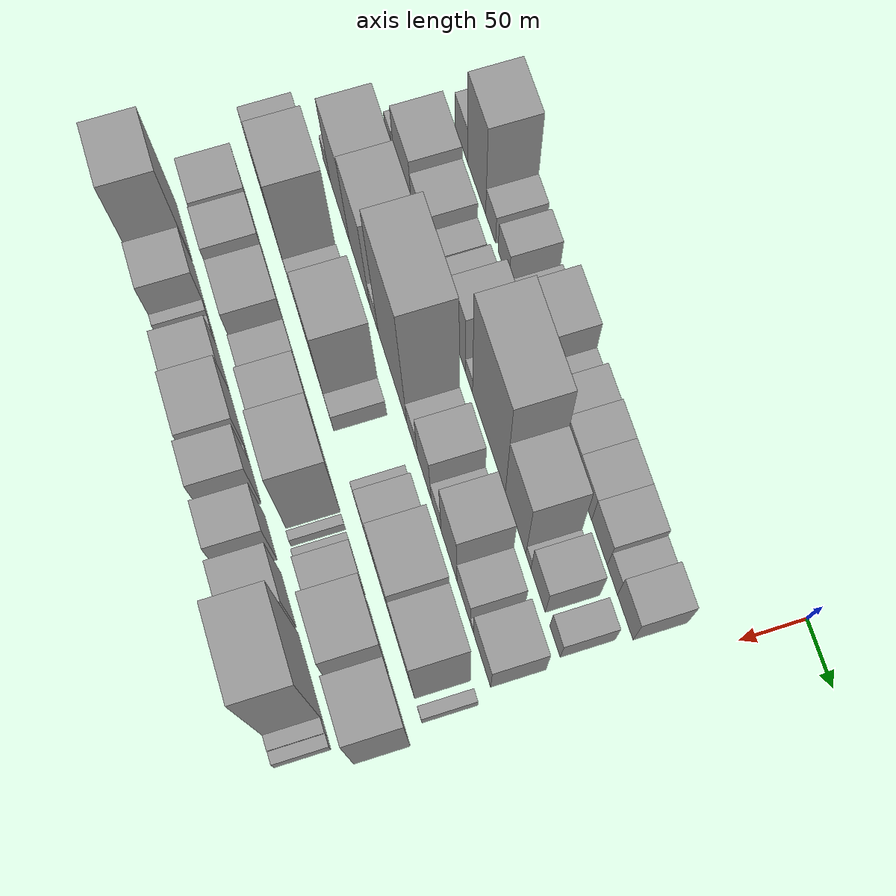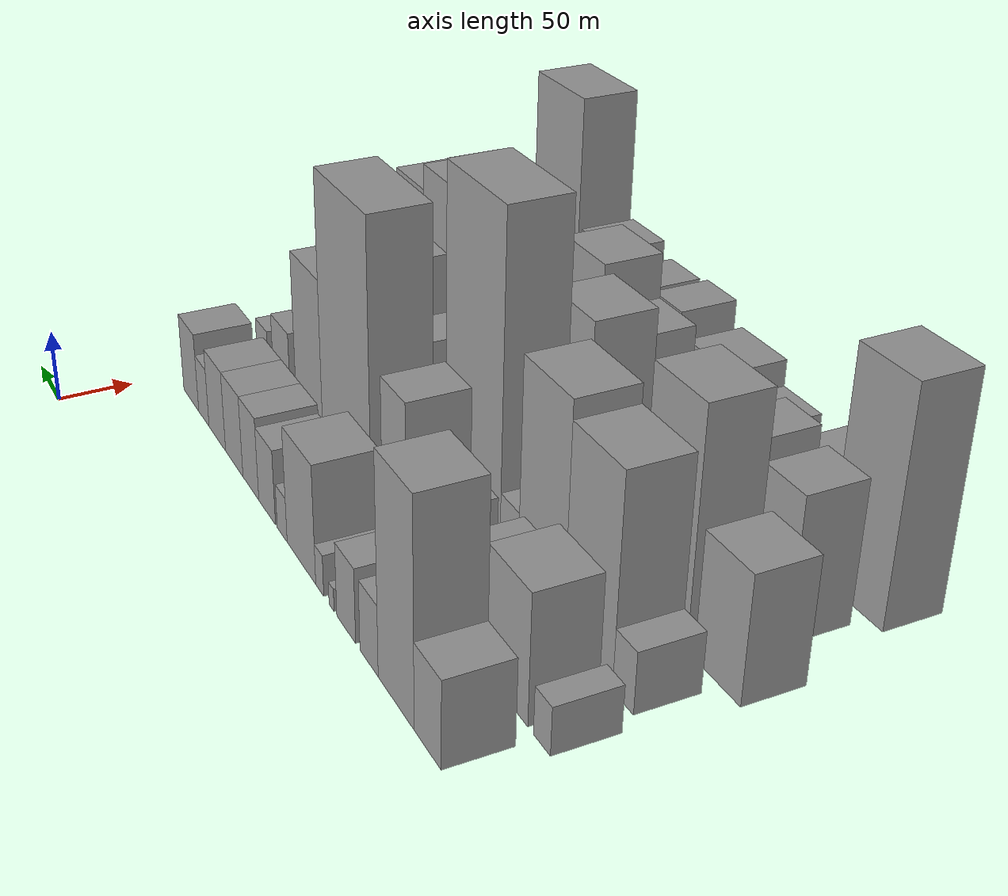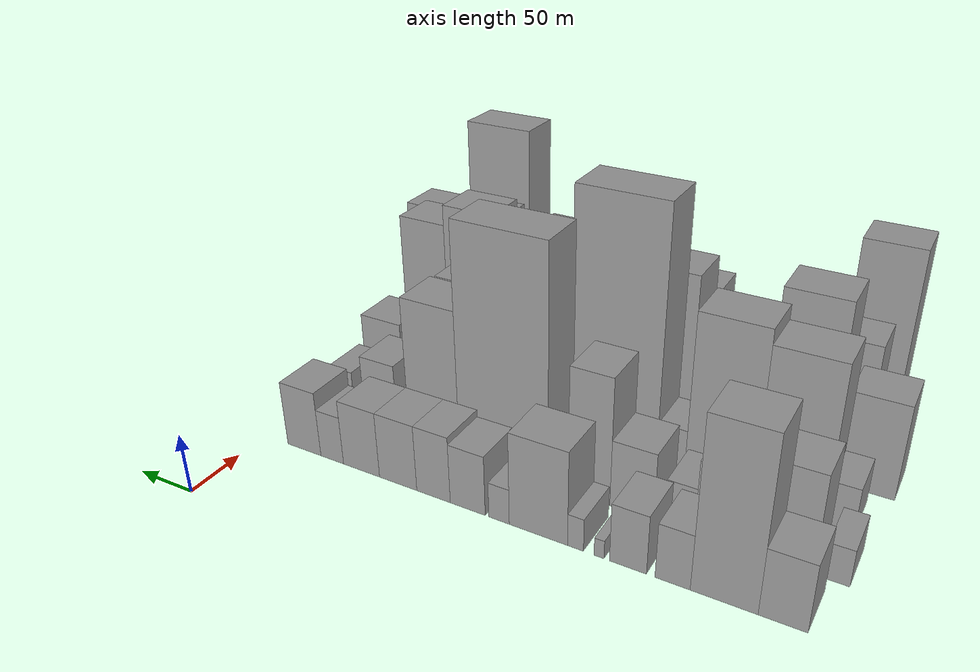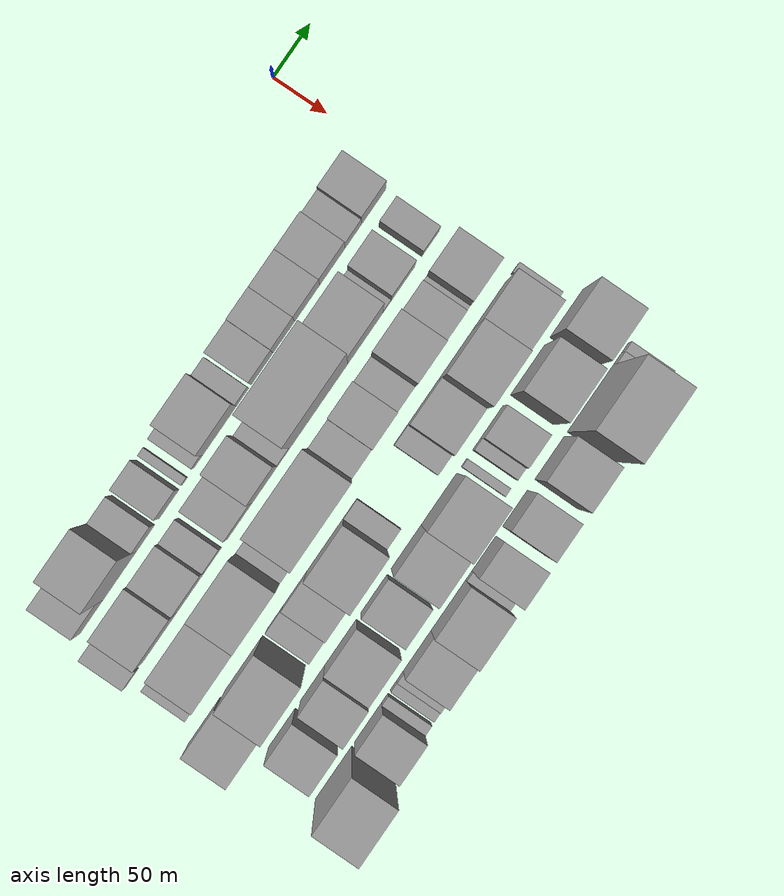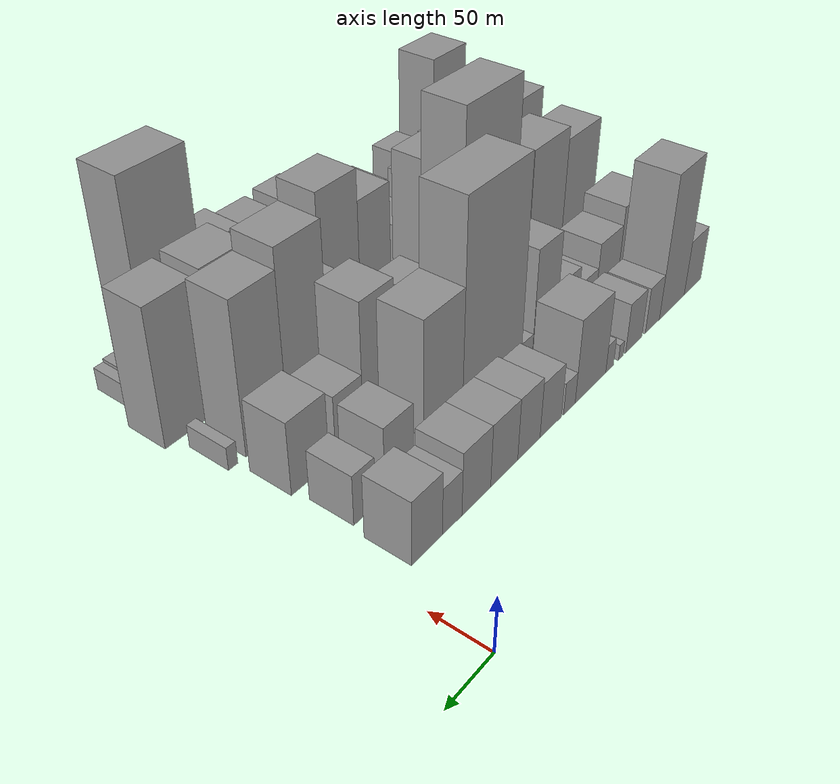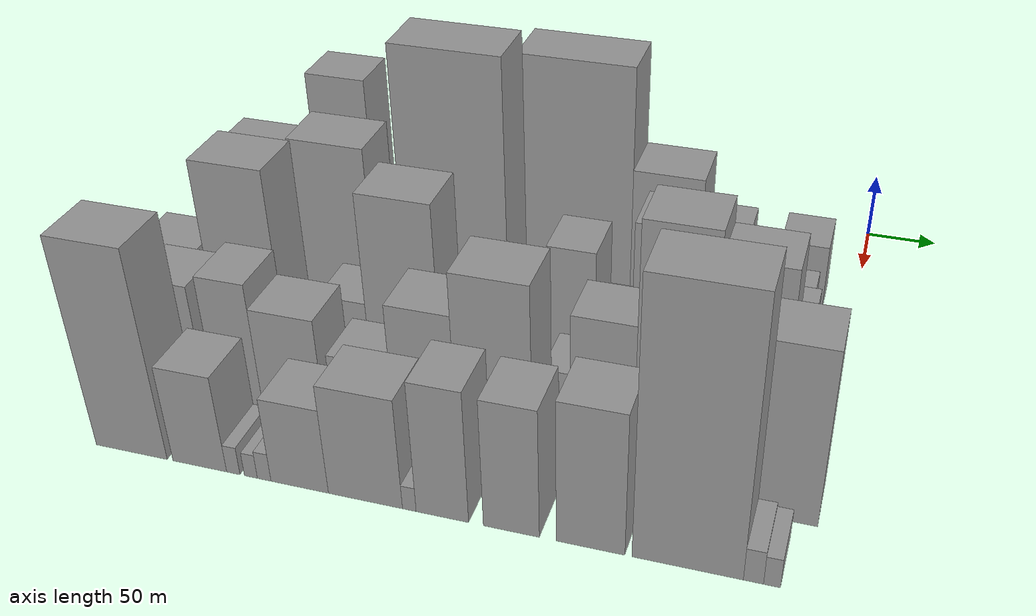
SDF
<sdf version="1.6">
 <world name="default">
  <model name="building_13">
   <static>1</static>
   <pose>100.0000 -419.7006 0 0.000000 0.000000 0.000000</pose>
   <link name="link">
    <pose>0 0 27.00 0 0 0</pose>
    <collision name="collision"><geometry><box><size>40.0000 31.6068 54.0000</size></box></geometry></collision>
    <visual name="visual">
     <cast_shadows>0</cast_shadows>
     <geometry><box><size>40.0000 31.6068 54.0000</size></box></geometry>
     <material>
      <script>
       <uri>model://grey_wall/materials/scripts</uri>
       <uri>model://grey_wall/materials/textures</uri>
       <name>vrc/grey_wall</name>
      </script>
     </material>
    </visual>
   </link>
  </model>
  <model name="building_14">
   <static>1</static>
   <pose>100.0000 -381.3172 0 0.000000 0.000000 0.000000</pose>
   <link name="link">
    <pose>0 0 69.00 0 0 0</pose>
    <collision name="collision"><geometry><box><size>40.0000 45.1601 138.0000</size></box></geometry></collision>
    <visual name="visual">
     <cast_shadows>0</cast_shadows>
     <geometry><box><size>40.0000 45.1601 138.0000</size></box></geometry>
     <material>
      <script>
       <uri>model://grey_wall/materials/scripts</uri>
       <uri>model://grey_wall/materials/textures</uri>
       <name>vrc/grey_wall</name>
      </script>
     </material>
    </visual>
   </link>
  </model>
  <model name="building_15">
   <static>1</static>
   <pose>100.0000 -346.4938 0 0.000000 0.000000 0.000000</pose>
   <link name="link">
    <pose>0 0 22.50 0 0 0</pose>
    <collision name="collision"><geometry><box><size>40.0000 24.4866 45.0000</size></box></geometry></collision>
    <visual name="visual">
     <cast_shadows>0</cast_shadows>
     <geometry><box><size>40.0000 24.4866 45.0000</size></box></geometry>
     <material>
      <script>
       <uri>model://grey_wall/materials/scripts</uri>
       <uri>model://grey_wall/materials/textures</uri>
       <name>vrc/grey_wall</name>
      </script>
     </material>
    </visual>
   </link>
  </model>
  <model name="building_16">
   <static>1</static>
   <pose>100.0000 -314.8308 0 0.000000 0.000000 0.000000</pose>
   <link name="link">
    <pose>0 0 24.00 0 0 0</pose>
    <collision name="collision"><geometry><box><size>40.0000 26.8396 48.0000</size></box></geometry></collision>
    <visual name="visual">
     <cast_shadows>0</cast_shadows>
     <geometry><box><size>40.0000 26.8396 48.0000</size></box></geometry>
     <material>
      <script>
       <uri>model://grey_wall/materials/scripts</uri>
       <uri>model://grey_wall/materials/textures</uri>
       <name>vrc/grey_wall</name>
      </script>
     </material>
    </visual>
   </link>
  </model>
  <model name="building_17">
   <static>1</static>
   <pose>100.0000 -293.7023 0 0.000000 0.000000 0.000000</pose>
   <link name="link">
    <pose>0 0 7.50 0 0 0</pose>
    <collision name="collision"><geometry><box><size>40.0000 7.4174 15.0000</size></box></geometry></collision>
    <visual name="visual">
     <cast_shadows>0</cast_shadows>
     <geometry><box><size>40.0000 7.4174 15.0000</size></box></geometry>
     <material>
      <script>
       <uri>model://grey_wall/materials/scripts</uri>
       <uri>model://grey_wall/materials/textures</uri>
       <name>vrc/grey_wall</name>
      </script>
     </material>
    </visual>
   </link>
  </model>
  <model name="building_18">
   <static>1</static>
   <pose>100.0000 -275.9032 0 0.000000 0.000000 0.000000</pose>
   <link name="link">
    <pose>0 0 13.50 0 0 0</pose>
    <collision name="collision"><geometry><box><size>40.0000 12.1808 27.0000</size></box></geometry></collision>
    <visual name="visual">
     <cast_shadows>0</cast_shadows>
     <geometry><box><size>40.0000 12.1808 27.0000</size></box></geometry>
     <material>
      <script>
       <uri>model://grey_wall/materials/scripts</uri>
       <uri>model://grey_wall/materials/textures</uri>
       <name>vrc/grey_wall</name>
      </script>
     </material>
    </visual>
   </link>
  </model>
  <model name="building_19">
   <static>1</static>
   <pose>100.0000 -246.8613 0 0.000000 0.000000 0.000000</pose>
   <link name="link">
    <pose>0 0 39.00 0 0 0</pose>
    <collision name="collision"><geometry><box><size>40.0000 45.9031 78.0000</size></box></geometry></collision>
    <visual name="visual">
     <cast_shadows>0</cast_shadows>
     <geometry><box><size>40.0000 45.9031 78.0000</size></box></geometry>
     <material>
      <script>
       <uri>model://grey_wall/materials/scripts</uri>
       <uri>model://grey_wall/materials/textures</uri>
       <name>vrc/grey_wall</name>
      </script>
     </material>
    </visual>
   </link>
  </model>
  <model name="building_20">
   <static>1</static>
   <pose>100.0000 -215.5407 0 0.000000 0.000000 0.000000</pose>
   <link name="link">
    <pose>0 0 15.00 0 0 0</pose>
    <collision name="collision"><geometry><box><size>40.0000 16.7380 30.0000</size></box></geometry></collision>
    <visual name="visual">
     <cast_shadows>0</cast_shadows>
     <geometry><box><size>40.0000 16.7380 30.0000</size></box></geometry>
     <material>
      <script>
       <uri>model://grey_wall/materials/scripts</uri>
       <uri>model://grey_wall/materials/textures</uri>
       <name>vrc/grey_wall</name>
      </script>
     </material>
    </visual>
   </link>
  </model>
  <model name="building_21">
   <static>1</static>
   <pose>100.0000 -189.4003 0 0.000000 0.000000 0.000000</pose>
   <link name="link">
    <pose>0 0 25.50 0 0 0</pose>
    <collision name="collision"><geometry><box><size>40.0000 29.5428 51.0000</size></box></geometry></collision>
    <visual name="visual">
     <cast_shadows>0</cast_shadows>
     <geometry><box><size>40.0000 29.5428 51.0000</size></box></geometry>
     <material>
      <script>
       <uri>model://grey_wall/materials/scripts</uri>
       <uri>model://grey_wall/materials/textures</uri>
       <name>vrc/grey_wall</name>
      </script>
     </material>
    </visual>
   </link>
  </model>
  <model name="building_22">
   <static>1</static>
   <pose>100.0000 -159.9750 0 0.000000 0.000000 0.000000</pose>
   <link name="link">
    <pose>0 0 28.50 0 0 0</pose>
    <collision name="collision"><geometry><box><size>40.0000 29.3079 57.0000</size></box></geometry></collision>
    <visual name="visual">
     <cast_shadows>0</cast_shadows>
     <geometry><box><size>40.0000 29.3079 57.0000</size></box></geometry>
     <material>
      <script>
       <uri>model://grey_wall/materials/scripts</uri>
       <uri>model://grey_wall/materials/textures</uri>
       <name>vrc/grey_wall</name>
      </script>
     </material>
    </visual>
   </link>
  </model>
  <model name="building_23">
   <static>1</static>
   <pose>100.0000 -128.4141 0 0.000000 0.000000 0.000000</pose>
   <link name="link">
    <pose>0 0 28.50 0 0 0</pose>
    <collision name="collision"><geometry><box><size>40.0000 33.8138 57.0000</size></box></geometry></collision>
    <visual name="visual">
     <cast_shadows>0</cast_shadows>
     <geometry><box><size>40.0000 33.8138 57.0000</size></box></geometry>
     <material>
      <script>
       <uri>model://grey_wall/materials/scripts</uri>
       <uri>model://grey_wall/materials/textures</uri>
       <name>vrc/grey_wall</name>
      </script>
     </material>
    </visual>
   </link>
  </model>
  <model name="building_24">
   <static>1</static>
   <pose>100.0000 -94.5212 0 0.000000 0.000000 0.000000</pose>
   <link name="link">
    <pose>0 0 28.50 0 0 0</pose>
    <collision name="collision"><geometry><box><size>40.0000 33.9721 57.0000</size></box></geometry></collision>
    <visual name="visual">
     <cast_shadows>0</cast_shadows>
     <geometry><box><size>40.0000 33.9721 57.0000</size></box></geometry>
     <material>
      <script>
       <uri>model://grey_wall/materials/scripts</uri>
       <uri>model://grey_wall/materials/textures</uri>
       <name>vrc/grey_wall</name>
      </script>
     </material>
    </visual>
   </link>
  </model>
  <model name="building_25">
   <static>1</static>
   <pose>100.0000 -66.5275 0 0.000000 0.000000 0.000000</pose>
   <link name="link">
    <pose>0 0 21.00 0 0 0</pose>
    <collision name="collision"><geometry><box><size>40.0000 22.0153 42.0000</size></box></geometry></collision>
    <visual name="visual">
     <cast_shadows>0</cast_shadows>
     <geometry><box><size>40.0000 22.0153 42.0000</size></box></geometry>
     <material>
      <script>
       <uri>model://grey_wall/materials/scripts</uri>
       <uri>model://grey_wall/materials/textures</uri>
       <name>vrc/grey_wall</name>
      </script>
     </material>
    </visual>
   </link>
  </model>
  <model name="building_26">
   <static>1</static>
   <pose>100.0000 -39.0222 0 0.000000 0.000000 0.000000</pose>
   <link name="link">
    <pose>0 0 28.50 0 0 0</pose>
    <collision name="collision"><geometry><box><size>40.0000 32.9953 57.0000</size></box></geometry></collision>
    <visual name="visual">
     <cast_shadows>0</cast_shadows>
     <geometry><box><size>40.0000 32.9953 57.0000</size></box></geometry>
     <material>
      <script>
       <uri>model://grey_wall/materials/scripts</uri>
       <uri>model://grey_wall/materials/textures</uri>
       <name>vrc/grey_wall</name>
      </script>
     </material>
    </visual>
   </link>
  </model>
  <model name="building_64">
   <static>1</static>
   <pose>152.0000 -440.0525 0 0.000000 0.000000 0.000000</pose>
   <link name="link">
    <pose>0 0 15.00 0 0 0</pose>
    <collision name="collision"><geometry><box><size>40.0000 17.5593 30.0000</size></box></geometry></collision>
    <visual name="visual">
     <cast_shadows>0</cast_shadows>
     <geometry><box><size>40.0000 17.5593 30.0000</size></box></geometry>
     <material>
      <script>
       <uri>model://grey_wall/materials/scripts</uri>
       <uri>model://grey_wall/materials/textures</uri>
       <name>vrc/grey_wall</name>
      </script>
     </material>
    </visual>
   </link>
  </model>
  <model name="building_65">
   <static>1</static>
   <pose>152.0000 -402.0545 0 0.000000 0.000000 0.000000</pose>
   <link name="link">
    <pose>0 0 40.50 0 0 0</pose>
    <collision name="collision"><geometry><box><size>40.0000 46.4367 81.0000</size></box></geometry></collision>
    <visual name="visual">
     <cast_shadows>0</cast_shadows>
     <geometry><box><size>40.0000 46.4367 81.0000</size></box></geometry>
     <material>
      <script>
       <uri>model://grey_wall/materials/scripts</uri>
       <uri>model://grey_wall/materials/textures</uri>
       <name>vrc/grey_wall</name>
      </script>
     </material>
    </visual>
   </link>
  </model>
  <model name="building_66">
   <static>1</static>
   <pose>152.0000 -360.3025 0 0.000000 0.000000 0.000000</pose>
   <link name="link">
    <pose>0 0 31.50 0 0 0</pose>
    <collision name="collision"><geometry><box><size>40.0000 37.0672 63.0000</size></box></geometry></collision>
    <visual name="visual">
     <cast_shadows>0</cast_shadows>
     <geometry><box><size>40.0000 37.0672 63.0000</size></box></geometry>
     <material>
      <script>
       <uri>model://grey_wall/materials/scripts</uri>
       <uri>model://grey_wall/materials/textures</uri>
       <name>vrc/grey_wall</name>
      </script>
     </material>
    </visual>
   </link>
  </model>
  <model name="building_67">
   <static>1</static>
   <pose>152.0000 -330.6806 0 0.000000 0.000000 0.000000</pose>
   <link name="link">
    <pose>0 0 19.50 0 0 0</pose>
    <collision name="collision"><geometry><box><size>40.0000 22.1766 39.0000</size></box></geometry></collision>
    <visual name="visual">
     <cast_shadows>0</cast_shadows>
     <geometry><box><size>40.0000 22.1766 39.0000</size></box></geometry>
     <material>
      <script>
       <uri>model://grey_wall/materials/scripts</uri>
       <uri>model://grey_wall/materials/textures</uri>
       <name>vrc/grey_wall</name>
      </script>
     </material>
    </visual>
   </link>
  </model>
  <model name="building_68">
   <static>1</static>
   <pose>152.0000 -294.5357 0 0.000000 0.000000 0.000000</pose>
   <link name="link">
    <pose>0 0 28.50 0 0 0</pose>
    <collision name="collision"><geometry><box><size>40.0000 34.1132 57.0000</size></box></geometry></collision>
    <visual name="visual">
     <cast_shadows>0</cast_shadows>
     <geometry><box><size>40.0000 34.1132 57.0000</size></box></geometry>
     <material>
      <script>
       <uri>model://grey_wall/materials/scripts</uri>
       <uri>model://grey_wall/materials/textures</uri>
       <name>vrc/grey_wall</name>
      </script>
     </material>
    </visual>
   </link>
  </model>
  <model name="building_69">
   <static>1</static>
   <pose>152.0000 -260.5243 0 0.000000 0.000000 0.000000</pose>
   <link name="link">
    <pose>0 0 54.00 0 0 0</pose>
    <collision name="collision"><geometry><box><size>40.0000 33.9095 108.0000</size></box></geometry></collision>
    <visual name="visual">
     <cast_shadows>0</cast_shadows>
     <geometry><box><size>40.0000 33.9095 108.0000</size></box></geometry>
     <material>
      <script>
       <uri>model://grey_wall/materials/scripts</uri>
       <uri>model://grey_wall/materials/textures</uri>
       <name>vrc/grey_wall</name>
      </script>
     </material>
    </visual>
   </link>
  </model>
  <model name="building_70">
   <static>1</static>
   <pose>152.0000 -235.2691 0 0.000000 0.000000 0.000000</pose>
   <link name="link">
    <pose>0 0 15.00 0 0 0</pose>
    <collision name="collision"><geometry><box><size>40.0000 16.6010 30.0000</size></box></geometry></collision>
    <visual name="visual">
     <cast_shadows>0</cast_shadows>
     <geometry><box><size>40.0000 16.6010 30.0000</size></box></geometry>
     <material>
      <script>
       <uri>model://grey_wall/materials/scripts</uri>
       <uri>model://grey_wall/materials/textures</uri>
       <name>vrc/grey_wall</name>
      </script>
     </material>
    </visual>
   </link>
  </model>
  <model name="building_71">
   <static>1</static>
   <pose>152.0000 -188.2205 0 0.000000 0.000000 0.000000</pose>
   <link name="link">
    <pose>0 0 99.00 0 0 0</pose>
    <collision name="collision"><geometry><box><size>40.0000 77.4962 198.0000</size></box></geometry></collision>
    <visual name="visual">
     <cast_shadows>0</cast_shadows>
     <geometry><box><size>40.0000 77.4962 198.0000</size></box></geometry>
     <material>
      <script>
       <uri>model://grey_wall/materials/scripts</uri>
       <uri>model://grey_wall/materials/textures</uri>
       <name>vrc/grey_wall</name>
      </script>
     </material>
    </visual>
   </link>
  </model>
  <model name="building_72">
   <static>1</static>
   <pose>152.0000 -125.9959 0 0.000000 0.000000 0.000000</pose>
   <link name="link">
    <pose>0 0 63.00 0 0 0</pose>
    <collision name="collision"><geometry><box><size>40.0000 46.9530 126.0000</size></box></geometry></collision>
    <visual name="visual">
     <cast_shadows>0</cast_shadows>
     <geometry><box><size>40.0000 46.9530 126.0000</size></box></geometry>
     <material>
      <script>
       <uri>model://grey_wall/materials/scripts</uri>
       <uri>model://grey_wall/materials/textures</uri>
       <name>vrc/grey_wall</name>
      </script>
     </material>
    </visual>
   </link>
  </model>
  <model name="building_73">
   <static>1</static>
   <pose>152.0000 -96.8353 0 0.000000 0.000000 0.000000</pose>
   <link name="link">
    <pose>0 0 12.00 0 0 0</pose>
    <collision name="collision"><geometry><box><size>40.0000 11.3681 24.0000</size></box></geometry></collision>
    <visual name="visual">
     <cast_shadows>0</cast_shadows>
     <geometry><box><size>40.0000 11.3681 24.0000</size></box></geometry>
     <material>
      <script>
       <uri>model://grey_wall/materials/scripts</uri>
       <uri>model://grey_wall/materials/textures</uri>
       <name>vrc/grey_wall</name>
      </script>
     </material>
    </visual>
   </link>
  </model>
  <model name="building_74">
   <static>1</static>
   <pose>152.0000 -75.0683 0 0.000000 0.000000 0.000000</pose>
   <link name="link">
    <pose>0 0 31.50 0 0 0</pose>
    <collision name="collision"><geometry><box><size>40.0000 32.1659 63.0000</size></box></geometry></collision>
    <visual name="visual">
     <cast_shadows>0</cast_shadows>
     <geometry><box><size>40.0000 32.1659 63.0000</size></box></geometry>
     <material>
      <script>
       <uri>model://grey_wall/materials/scripts</uri>
       <uri>model://grey_wall/materials/textures</uri>
       <name>vrc/grey_wall</name>
      </script>
     </material>
    </visual>
   </link>
  </model>
  <model name="building_75">
   <static>1</static>
   <pose>152.0000 -37.6213 0 0.000000 0.000000 0.000000</pose>
   <link name="link">
    <pose>0 0 22.50 0 0 0</pose>
    <collision name="collision"><geometry><box><size>40.0000 22.7282 45.0000</size></box></geometry></collision>
    <visual name="visual">
     <cast_shadows>0</cast_shadows>
     <geometry><box><size>40.0000 22.7282 45.0000</size></box></geometry>
     <material>
      <script>
       <uri>model://grey_wall/materials/scripts</uri>
       <uri>model://grey_wall/materials/textures</uri>
       <name>vrc/grey_wall</name>
      </script>
     </material>
    </visual>
   </link>
  </model>
  <model name="building_110">
   <static>1</static>
   <pose>204.0000 -429.1990 0 0.000000 0.000000 0.000000</pose>
   <link name="link">
    <pose>0 0 19.50 0 0 0</pose>
    <collision name="collision"><geometry><box><size>40.0000 20.7558 39.0000</size></box></geometry></collision>
    <visual name="visual">
     <cast_shadows>0</cast_shadows>
     <geometry><box><size>40.0000 20.7558 39.0000</size></box></geometry>
     <material>
      <script>
       <uri>model://grey_wall/materials/scripts</uri>
       <uri>model://grey_wall/materials/textures</uri>
       <name>vrc/grey_wall</name>
      </script>
     </material>
    </visual>
   </link>
  </model>
  <model name="building_111">
   <static>1</static>
   <pose>204.0000 -392.9264 0 0.000000 0.000000 0.000000</pose>
   <link name="link">
    <pose>0 0 66.00 0 0 0</pose>
    <collision name="collision"><geometry><box><size>40.0000 51.7894 132.0000</size></box></geometry></collision>
    <visual name="visual">
     <cast_shadows>0</cast_shadows>
     <geometry><box><size>40.0000 51.7894 132.0000</size></box></geometry>
     <material>
      <script>
       <uri>model://grey_wall/materials/scripts</uri>
       <uri>model://grey_wall/materials/textures</uri>
       <name>vrc/grey_wall</name>
      </script>
     </material>
    </visual>
   </link>
  </model>
  <model name="building_112">
   <static>1</static>
   <pose>204.0000 -340.4823 0 0.000000 0.000000 0.000000</pose>
   <link name="link">
    <pose>0 0 72.00 0 0 0</pose>
    <collision name="collision"><geometry><box><size>40.0000 53.0989 144.0000</size></box></geometry></collision>
    <visual name="visual">
     <cast_shadows>0</cast_shadows>
     <geometry><box><size>40.0000 53.0989 144.0000</size></box></geometry>
     <material>
      <script>
       <uri>model://grey_wall/materials/scripts</uri>
       <uri>model://grey_wall/materials/textures</uri>
       <name>vrc/grey_wall</name>
      </script>
     </material>
    </visual>
   </link>
  </model>
  <model name="building_113">
   <static>1</static>
   <pose>204.0000 -302.6719 0 0.000000 0.000000 0.000000</pose>
   <link name="link">
    <pose>0 0 22.50 0 0 0</pose>
    <collision name="collision"><geometry><box><size>40.0000 22.5219 45.0000</size></box></geometry></collision>
    <visual name="visual">
     <cast_shadows>0</cast_shadows>
     <geometry><box><size>40.0000 22.5219 45.0000</size></box></geometry>
     <material>
      <script>
       <uri>model://grey_wall/materials/scripts</uri>
       <uri>model://grey_wall/materials/textures</uri>
       <name>vrc/grey_wall</name>
      </script>
     </material>
    </visual>
   </link>
  </model>
  <model name="building_114">
   <static>1</static>
   <pose>204.0000 -255.2475 0 0.000000 0.000000 0.000000</pose>
   <link name="link">
    <pose>0 0 109.50 0 0 0</pose>
    <collision name="collision"><geometry><box><size>40.0000 72.3268 219.0000</size></box></geometry></collision>
    <visual name="visual">
     <cast_shadows>0</cast_shadows>
     <geometry><box><size>40.0000 72.3268 219.0000</size></box></geometry>
     <material>
      <script>
       <uri>model://grey_wall/materials/scripts</uri>
       <uri>model://grey_wall/materials/textures</uri>
       <name>vrc/grey_wall</name>
      </script>
     </material>
    </visual>
   </link>
  </model>
  <model name="building_115">
   <static>1</static>
   <pose>204.0000 -206.0007 0 0.000000 0.000000 0.000000</pose>
   <link name="link">
    <pose>0 0 24.00 0 0 0</pose>
    <collision name="collision"><geometry><box><size>40.0000 26.1669 48.0000</size></box></geometry></collision>
    <visual name="visual">
     <cast_shadows>0</cast_shadows>
     <geometry><box><size>40.0000 26.1669 48.0000</size></box></geometry>
     <material>
      <script>
       <uri>model://grey_wall/materials/scripts</uri>
       <uri>model://grey_wall/materials/textures</uri>
       <name>vrc/grey_wall</name>
      </script>
     </material>
    </visual>
   </link>
  </model>
  <model name="building_116">
   <static>1</static>
   <pose>204.0000 -176.4094 0 0.000000 0.000000 0.000000</pose>
   <link name="link">
    <pose>0 0 46.50 0 0 0</pose>
    <collision name="collision"><geometry><box><size>40.0000 33.0156 93.0000</size></box></geometry></collision>
    <visual name="visual">
     <cast_shadows>0</cast_shadows>
     <geometry><box><size>40.0000 33.0156 93.0000</size></box></geometry>
     <material>
      <script>
       <uri>model://grey_wall/materials/scripts</uri>
       <uri>model://grey_wall/materials/textures</uri>
       <name>vrc/grey_wall</name>
      </script>
     </material>
    </visual>
   </link>
  </model>
  <model name="building_117">
   <static>1</static>
   <pose>204.0000 -147.8134 0 0.000000 0.000000 0.000000</pose>
   <link name="link">
    <pose>0 0 22.50 0 0 0</pose>
    <collision name="collision"><geometry><box><size>40.0000 24.1765 45.0000</size></box></geometry></collision>
    <visual name="visual">
     <cast_shadows>0</cast_shadows>
     <geometry><box><size>40.0000 24.1765 45.0000</size></box></geometry>
     <material>
      <script>
       <uri>model://grey_wall/materials/scripts</uri>
       <uri>model://grey_wall/materials/textures</uri>
       <name>vrc/grey_wall</name>
      </script>
     </material>
    </visual>
   </link>
  </model>
  <model name="building_118">
   <static>1</static>
   <pose>204.0000 -117.0614 0 0.000000 0.000000 0.000000</pose>
   <link name="link">
    <pose>0 0 60.00 0 0 0</pose>
    <collision name="collision"><geometry><box><size>40.0000 37.3274 120.0000</size></box></geometry></collision>
    <visual name="visual">
     <cast_shadows>0</cast_shadows>
     <geometry><box><size>40.0000 37.3274 120.0000</size></box></geometry>
     <material>
      <script>
       <uri>model://grey_wall/materials/scripts</uri>
       <uri>model://grey_wall/materials/textures</uri>
       <name>vrc/grey_wall</name>
      </script>
     </material>
    </visual>
   </link>
  </model>
  <model name="building_119">
   <static>1</static>
   <pose>204.0000 -83.0047 0 0.000000 0.000000 0.000000</pose>
   <link name="link">
    <pose>0 0 28.50 0 0 0</pose>
    <collision name="collision"><geometry><box><size>40.0000 30.7859 57.0000</size></box></geometry></collision>
    <visual name="visual">
     <cast_shadows>0</cast_shadows>
     <geometry><box><size>40.0000 30.7859 57.0000</size></box></geometry>
     <material>
      <script>
       <uri>model://grey_wall/materials/scripts</uri>
       <uri>model://grey_wall/materials/textures</uri>
       <name>vrc/grey_wall</name>
      </script>
     </material>
    </visual>
   </link>
  </model>
  <model name="building_120">
   <static>1</static>
   <pose>204.0000 -63.9904 0 0.000000 0.000000 0.000000</pose>
   <link name="link">
    <pose>0 0 9.00 0 0 0</pose>
    <collision name="collision"><geometry><box><size>40.0000 7.2428 18.0000</size></box></geometry></collision>
    <visual name="visual">
     <cast_shadows>0</cast_shadows>
     <geometry><box><size>40.0000 7.2428 18.0000</size></box></geometry>
     <material>
      <script>
       <uri>model://grey_wall/materials/scripts</uri>
       <uri>model://grey_wall/materials/textures</uri>
       <name>vrc/grey_wall</name>
      </script>
     </material>
    </visual>
   </link>
  </model>
  <model name="building_121">
   <static>1</static>
   <pose>204.0000 -40.7648 0 0.000000 0.000000 0.000000</pose>
   <link name="link">
    <pose>0 0 33.00 0 0 0</pose>
    <collision name="collision"><geometry><box><size>40.0000 39.2086 66.0000</size></box></geometry></collision>
    <visual name="visual">
     <cast_shadows>0</cast_shadows>
     <geometry><box><size>40.0000 39.2086 66.0000</size></box></geometry>
     <material>
      <script>
       <uri>model://grey_wall/materials/scripts</uri>
       <uri>model://grey_wall/materials/textures</uri>
       <name>vrc/grey_wall</name>
      </script>
     </material>
    </visual>
   </link>
  </model>
  <model name="building_159">
   <static>1</static>
   <pose>256.0000 -435.5219 0 0.000000 0.000000 0.000000</pose>
   <link name="link">
    <pose>0 0 40.50 0 0 0</pose>
    <collision name="collision"><geometry><box><size>40.0000 42.8469 81.0000</size></box></geometry></collision>
    <visual name="visual">
     <cast_shadows>0</cast_shadows>
     <geometry><box><size>40.0000 42.8469 81.0000</size></box></geometry>
     <material>
      <script>
       <uri>model://grey_wall/materials/scripts</uri>
       <uri>model://grey_wall/materials/textures</uri>
       <name>vrc/grey_wall</name>
      </script>
     </material>
    </visual>
   </link>
  </model>
  <model name="building_160">
   <static>1</static>
   <pose>256.0000 -382.2019 0 0.000000 0.000000 0.000000</pose>
   <link name="link">
    <pose>0 0 75.00 0 0 0</pose>
    <collision name="collision"><geometry><box><size>40.0000 49.7930 150.0000</size></box></geometry></collision>
    <visual name="visual">
     <cast_shadows>0</cast_shadows>
     <geometry><box><size>40.0000 49.7930 150.0000</size></box></geometry>
     <material>
      <script>
       <uri>model://grey_wall/materials/scripts</uri>
       <uri>model://grey_wall/materials/textures</uri>
       <name>vrc/grey_wall</name>
      </script>
     </material>
    </visual>
   </link>
  </model>
  <model name="building_161">
   <static>1</static>
   <pose>256.0000 -340.4805 0 0.000000 0.000000 0.000000</pose>
   <link name="link">
    <pose>0 0 21.00 0 0 0</pose>
    <collision name="collision"><geometry><box><size>40.0000 21.6498 42.0000</size></box></geometry></collision>
    <visual name="visual">
     <cast_shadows>0</cast_shadows>
     <geometry><box><size>40.0000 21.6498 42.0000</size></box></geometry>
     <material>
      <script>
       <uri>model://grey_wall/materials/scripts</uri>
       <uri>model://grey_wall/materials/textures</uri>
       <name>vrc/grey_wall</name>
      </script>
     </material>
    </visual>
   </link>
  </model>
  <model name="building_162">
   <static>1</static>
   <pose>256.0000 -313.4008 0 0.000000 0.000000 0.000000</pose>
   <link name="link">
    <pose>0 0 31.50 0 0 0</pose>
    <collision name="collision"><geometry><box><size>40.0000 32.5097 63.0000</size></box></geometry></collision>
    <visual name="visual">
     <cast_shadows>0</cast_shadows>
     <geometry><box><size>40.0000 32.5097 63.0000</size></box></geometry>
     <material>
      <script>
       <uri>model://grey_wall/materials/scripts</uri>
       <uri>model://grey_wall/materials/textures</uri>
       <name>vrc/grey_wall</name>
      </script>
     </material>
    </visual>
   </link>
  </model>
  <model name="building_163">
   <static>1</static>
   <pose>256.0000 -272.5962 0 0.000000 0.000000 0.000000</pose>
   <link name="link">
    <pose>0 0 72.00 0 0 0</pose>
    <collision name="collision"><geometry><box><size>40.0000 49.0995 144.0000</size></box></geometry></collision>
    <visual name="visual">
     <cast_shadows>0</cast_shadows>
     <geometry><box><size>40.0000 49.0995 144.0000</size></box></geometry>
     <material>
      <script>
       <uri>model://grey_wall/materials/scripts</uri>
       <uri>model://grey_wall/materials/textures</uri>
       <name>vrc/grey_wall</name>
      </script>
     </material>
    </visual>
   </link>
  </model>
  <model name="building_164">
   <static>1</static>
   <pose>256.0000 -238.8613 0 0.000000 0.000000 0.000000</pose>
   <link name="link">
    <pose>0 0 16.50 0 0 0</pose>
    <collision name="collision"><geometry><box><size>40.0000 18.3702 33.0000</size></box></geometry></collision>
    <visual name="visual">
     <cast_shadows>0</cast_shadows>
     <geometry><box><size>40.0000 18.3702 33.0000</size></box></geometry>
     <material>
      <script>
       <uri>model://grey_wall/materials/scripts</uri>
       <uri>model://grey_wall/materials/textures</uri>
       <name>vrc/grey_wall</name>
      </script>
     </material>
    </visual>
   </link>
  </model>
  <model name="building_165">
   <static>1</static>
   <pose>256.0000 -171.2919 0 0.000000 0.000000 0.000000</pose>
   <link name="link">
    <pose>0 0 18.00 0 0 0</pose>
    <collision name="collision"><geometry><box><size>40.0000 18.2562 36.0000</size></box></geometry></collision>
    <visual name="visual">
     <cast_shadows>0</cast_shadows>
     <geometry><box><size>40.0000 18.2562 36.0000</size></box></geometry>
     <material>
      <script>
       <uri>model://grey_wall/materials/scripts</uri>
       <uri>model://grey_wall/materials/textures</uri>
       <name>vrc/grey_wall</name>
      </script>
     </material>
    </visual>
   </link>
  </model>
  <model name="building_166">
   <static>1</static>
   <pose>256.0000 -141.3103 0 0.000000 0.000000 0.000000</pose>
   <link name="link">
    <pose>0 0 40.50 0 0 0</pose>
    <collision name="collision"><geometry><box><size>40.0000 41.7068 81.0000</size></box></geometry></collision>
    <visual name="visual">
     <cast_shadows>0</cast_shadows>
     <geometry><box><size>40.0000 41.7068 81.0000</size></box></geometry>
     <material>
      <script>
       <uri>model://grey_wall/materials/scripts</uri>
       <uri>model://grey_wall/materials/textures</uri>
       <name>vrc/grey_wall</name>
      </script>
     </material>
    </visual>
   </link>
  </model>
  <model name="building_167">
   <static>1</static>
   <pose>256.0000 -96.9217 0 0.000000 0.000000 0.000000</pose>
   <link name="link">
    <pose>0 0 78.00 0 0 0</pose>
    <collision name="collision"><geometry><box><size>40.0000 47.0704 156.0000</size></box></geometry></collision>
    <visual name="visual">
     <cast_shadows>0</cast_shadows>
     <geometry><box><size>40.0000 47.0704 156.0000</size></box></geometry>
     <material>
      <script>
       <uri>model://grey_wall/materials/scripts</uri>
       <uri>model://grey_wall/materials/textures</uri>
       <name>vrc/grey_wall</name>
      </script>
     </material>
    </visual>
   </link>
  </model>
  <model name="building_168">
   <static>1</static>
   <pose>256.0000 -51.4227 0 0.000000 0.000000 0.000000</pose>
   <link name="link">
    <pose>0 0 69.00 0 0 0</pose>
    <collision name="collision"><geometry><box><size>40.0000 43.9277 138.0000</size></box></geometry></collision>
    <visual name="visual">
     <cast_shadows>0</cast_shadows>
     <geometry><box><size>40.0000 43.9277 138.0000</size></box></geometry>
     <material>
      <script>
       <uri>model://grey_wall/materials/scripts</uri>
       <uri>model://grey_wall/materials/textures</uri>
       <name>vrc/grey_wall</name>
      </script>
     </material>
    </visual>
   </link>
  </model>
  <model name="building_169">
   <static>1</static>
   <pose>256.0000 -16.7953 0 0.000000 0.000000 0.000000</pose>
   <link name="link">
    <pose>0 0 10.50 0 0 0</pose>
    <collision name="collision"><geometry><box><size>40.0000 9.3270 21.0000</size></box></geometry></collision>
    <visual name="visual">
     <cast_shadows>0</cast_shadows>
     <geometry><box><size>40.0000 9.3270 21.0000</size></box></geometry>
     <material>
      <script>
       <uri>model://grey_wall/materials/scripts</uri>
       <uri>model://grey_wall/materials/textures</uri>
       <name>vrc/grey_wall</name>
      </script>
     </material>
    </visual>
   </link>
  </model>
  <model name="building_208">
   <static>1</static>
   <pose>308.0000 -406.8236 0 0.000000 0.000000 0.000000</pose>
   <link name="link">
    <pose>0 0 46.50 0 0 0</pose>
    <collision name="collision"><geometry><box><size>40.0000 36.0913 93.0000</size></box></geometry></collision>
    <visual name="visual">
     <cast_shadows>0</cast_shadows>
     <geometry><box><size>40.0000 36.0913 93.0000</size></box></geometry>
     <material>
      <script>
       <uri>model://grey_wall/materials/scripts</uri>
       <uri>model://grey_wall/materials/textures</uri>
       <name>vrc/grey_wall</name>
      </script>
     </material>
    </visual>
   </link>
  </model>
  <model name="building_209">
   <static>1</static>
   <pose>308.0000 -365.3945 0 0.000000 0.000000 0.000000</pose>
   <link name="link">
    <pose>0 0 51.00 0 0 0</pose>
    <collision name="collision"><geometry><box><size>40.0000 32.7669 102.0000</size></box></geometry></collision>
    <visual name="visual">
     <cast_shadows>0</cast_shadows>
     <geometry><box><size>40.0000 32.7669 102.0000</size></box></geometry>
     <material>
      <script>
       <uri>model://grey_wall/materials/scripts</uri>
       <uri>model://grey_wall/materials/textures</uri>
       <name>vrc/grey_wall</name>
      </script>
     </material>
    </visual>
   </link>
  </model>
  <model name="building_210">
   <static>1</static>
   <pose>308.0000 -327.7071 0 0.000000 0.000000 0.000000</pose>
   <link name="link">
    <pose>0 0 42.00 0 0 0</pose>
    <collision name="collision"><geometry><box><size>40.0000 42.6079 84.0000</size></box></geometry></collision>
    <visual name="visual">
     <cast_shadows>0</cast_shadows>
     <geometry><box><size>40.0000 42.6079 84.0000</size></box></geometry>
     <material>
      <script>
       <uri>model://grey_wall/materials/scripts</uri>
       <uri>model://grey_wall/materials/textures</uri>
       <name>vrc/grey_wall</name>
      </script>
     </material>
    </visual>
   </link>
  </model>
  <model name="building_211">
   <static>1</static>
   <pose>308.0000 -282.4450 0 0.000000 0.000000 0.000000</pose>
   <link name="link">
    <pose>0 0 30.00 0 0 0</pose>
    <collision name="collision"><geometry><box><size>40.0000 35.9163 60.0000</size></box></geometry></collision>
    <visual name="visual">
     <cast_shadows>0</cast_shadows>
     <geometry><box><size>40.0000 35.9163 60.0000</size></box></geometry>
     <material>
      <script>
       <uri>model://grey_wall/materials/scripts</uri>
       <uri>model://grey_wall/materials/textures</uri>
       <name>vrc/grey_wall</name>
      </script>
     </material>
    </visual>
   </link>
  </model>
  <model name="building_212">
   <static>1</static>
   <pose>308.0000 -239.1399 0 0.000000 0.000000 0.000000</pose>
   <link name="link">
    <pose>0 0 52.50 0 0 0</pose>
    <collision name="collision"><geometry><box><size>40.0000 40.6938 105.0000</size></box></geometry></collision>
    <visual name="visual">
     <cast_shadows>0</cast_shadows>
     <geometry><box><size>40.0000 40.6938 105.0000</size></box></geometry>
     <material>
      <script>
       <uri>model://grey_wall/materials/scripts</uri>
       <uri>model://grey_wall/materials/textures</uri>
       <name>vrc/grey_wall</name>
      </script>
     </material>
    </visual>
   </link>
  </model>
  <model name="building_213">
   <static>1</static>
   <pose>308.0000 -194.7423 0 0.000000 0.000000 0.000000</pose>
   <link name="link">
    <pose>0 0 67.50 0 0 0</pose>
    <collision name="collision"><geometry><box><size>40.0000 48.1015 135.0000</size></box></geometry></collision>
    <visual name="visual">
     <cast_shadows>0</cast_shadows>
     <geometry><box><size>40.0000 48.1015 135.0000</size></box></geometry>
     <material>
      <script>
       <uri>model://grey_wall/materials/scripts</uri>
       <uri>model://grey_wall/materials/textures</uri>
       <name>vrc/grey_wall</name>
      </script>
     </material>
    </visual>
   </link>
  </model>
  <model name="building_214">
   <static>1</static>
   <pose>308.0000 -160.9712 0 0.000000 0.000000 0.000000</pose>
   <link name="link">
    <pose>0 0 9.00 0 0 0</pose>
    <collision name="collision"><geometry><box><size>40.0000 7.4407 18.0000</size></box></geometry></collision>
    <visual name="visual">
     <cast_shadows>0</cast_shadows>
     <geometry><box><size>40.0000 7.4407 18.0000</size></box></geometry>
     <material>
      <script>
       <uri>model://grey_wall/materials/scripts</uri>
       <uri>model://grey_wall/materials/textures</uri>
       <name>vrc/grey_wall</name>
      </script>
     </material>
    </visual>
   </link>
  </model>
  <model name="building_215">
   <static>1</static>
   <pose>308.0000 -143.7498 0 0.000000 0.000000 0.000000</pose>
   <link name="link">
    <pose>0 0 13.50 0 0 0</pose>
    <collision name="collision"><geometry><box><size>40.0000 11.0022 27.0000</size></box></geometry></collision>
    <visual name="visual">
     <cast_shadows>0</cast_shadows>
     <geometry><box><size>40.0000 11.0022 27.0000</size></box></geometry>
     <material>
      <script>
       <uri>model://grey_wall/materials/scripts</uri>
       <uri>model://grey_wall/materials/textures</uri>
       <name>vrc/grey_wall</name>
      </script>
     </material>
    </visual>
   </link>
  </model>
  <model name="building_216">
   <static>1</static>
   <pose>308.0000 -123.1769 0 0.000000 0.000000 0.000000</pose>
   <link name="link">
    <pose>0 0 25.50 0 0 0</pose>
    <collision name="collision"><geometry><box><size>40.0000 30.1436 51.0000</size></box></geometry></collision>
    <visual name="visual">
     <cast_shadows>0</cast_shadows>
     <geometry><box><size>40.0000 30.1436 51.0000</size></box></geometry>
     <material>
      <script>
       <uri>model://grey_wall/materials/scripts</uri>
       <uri>model://grey_wall/materials/textures</uri>
       <name>vrc/grey_wall</name>
      </script>
     </material>
    </visual>
   </link>
  </model>
  <model name="building_217">
   <static>1</static>
   <pose>308.0000 -74.8272 0 0.000000 0.000000 0.000000</pose>
   <link name="link">
    <pose>0 0 64.50 0 0 0</pose>
    <collision name="collision"><geometry><box><size>40.0000 46.5557 129.0000</size></box></geometry></collision>
    <visual name="visual">
     <cast_shadows>0</cast_shadows>
     <geometry><box><size>40.0000 46.5557 129.0000</size></box></geometry>
     <material>
      <script>
       <uri>model://grey_wall/materials/scripts</uri>
       <uri>model://grey_wall/materials/textures</uri>
       <name>vrc/grey_wall</name>
      </script>
     </material>
    </visual>
   </link>
  </model>
  <model name="building_218">
   <static>1</static>
   <pose>308.0000 -22.1289 0 0.000000 0.000000 0.000000</pose>
   <link name="link">
    <pose>0 0 63.00 0 0 0</pose>
    <collision name="collision"><geometry><box><size>40.0000 44.8409 126.0000</size></box></geometry></collision>
    <visual name="visual">
     <cast_shadows>0</cast_shadows>
     <geometry><box><size>40.0000 44.8409 126.0000</size></box></geometry>
     <material>
      <script>
       <uri>model://grey_wall/materials/scripts</uri>
       <uri>model://grey_wall/materials/textures</uri>
       <name>vrc/grey_wall</name>
      </script>
     </material>
    </visual>
   </link>
  </model>
  <model name="building_258">
   <static>1</static>
   <pose>360.0000 -412.7654 0 0.000000 0.000000 0.000000</pose>
   <link name="link">
    <pose>0 0 76.50 0 0 0</pose>
    <collision name="collision"><geometry><box><size>40.0000 49.1009 153.0000</size></box></geometry></collision>
    <visual name="visual">
     <cast_shadows>0</cast_shadows>
     <geometry><box><size>40.0000 49.1009 153.0000</size></box></geometry>
     <material>
      <script>
       <uri>model://grey_wall/materials/scripts</uri>
       <uri>model://grey_wall/materials/textures</uri>
       <name>vrc/grey_wall</name>
      </script>
     </material>
    </visual>
   </link>
  </model>
  <model name="building_259">
   <static>1</static>
   <pose>360.0000 -366.0842 0 0.000000 0.000000 0.000000</pose>
   <link name="link">
    <pose>0 0 36.00 0 0 0</pose>
    <collision name="collision"><geometry><box><size>40.0000 36.2615 72.0000</size></box></geometry></collision>
    <visual name="visual">
     <cast_shadows>0</cast_shadows>
     <geometry><box><size>40.0000 36.2615 72.0000</size></box></geometry>
     <material>
      <script>
       <uri>model://grey_wall/materials/scripts</uri>
       <uri>model://grey_wall/materials/textures</uri>
       <name>vrc/grey_wall</name>
      </script>
     </material>
    </visual>
   </link>
  </model>
  <model name="building_260">
   <static>1</static>
   <pose>360.0000 -343.5047 0 0.000000 0.000000 0.000000</pose>
   <link name="link">
    <pose>0 0 10.50 0 0 0</pose>
    <collision name="collision"><geometry><box><size>40.0000 8.8976 21.0000</size></box></geometry></collision>
    <visual name="visual">
     <cast_shadows>0</cast_shadows>
     <geometry><box><size>40.0000 8.8976 21.0000</size></box></geometry>
     <material>
      <script>
       <uri>model://grey_wall/materials/scripts</uri>
       <uri>model://grey_wall/materials/textures</uri>
       <name>vrc/grey_wall</name>
      </script>
     </material>
    </visual>
   </link>
  </model>
  <model name="building_261">
   <static>1</static>
   <pose>360.0000 -331.7904 0 0.000000 0.000000 0.000000</pose>
   <link name="link">
    <pose>0 0 9.00 0 0 0</pose>
    <collision name="collision"><geometry><box><size>40.0000 8.5310 18.0000</size></box></geometry></collision>
    <visual name="visual">
     <cast_shadows>0</cast_shadows>
     <geometry><box><size>40.0000 8.5310 18.0000</size></box></geometry>
     <material>
      <script>
       <uri>model://grey_wall/materials/scripts</uri>
       <uri>model://grey_wall/materials/textures</uri>
       <name>vrc/grey_wall</name>
      </script>
     </material>
    </visual>
   </link>
  </model>
  <model name="building_262">
   <static>1</static>
   <pose>360.0000 -323.0317 0 0.000000 0.000000 0.000000</pose>
   <link name="link">
    <pose>0 0 10.50 0 0 0</pose>
    <collision name="collision"><geometry><box><size>40.0000 8.9864 21.0000</size></box></geometry></collision>
    <visual name="visual">
     <cast_shadows>0</cast_shadows>
     <geometry><box><size>40.0000 8.9864 21.0000</size></box></geometry>
     <material>
      <script>
       <uri>model://grey_wall/materials/scripts</uri>
       <uri>model://grey_wall/materials/textures</uri>
       <name>vrc/grey_wall</name>
      </script>
     </material>
    </visual>
   </link>
  </model>
  <model name="building_263">
   <static>1</static>
   <pose>360.0000 -299.8633 0 0.000000 0.000000 0.000000</pose>
   <link name="link">
    <pose>0 0 31.50 0 0 0</pose>
    <collision name="collision"><geometry><box><size>40.0000 37.3503 63.0000</size></box></geometry></collision>
    <visual name="visual">
     <cast_shadows>0</cast_shadows>
     <geometry><box><size>40.0000 37.3503 63.0000</size></box></geometry>
     <material>
      <script>
       <uri>model://grey_wall/materials/scripts</uri>
       <uri>model://grey_wall/materials/textures</uri>
       <name>vrc/grey_wall</name>
      </script>
     </material>
    </visual>
   </link>
  </model>
  <model name="building_264">
   <static>1</static>
   <pose>360.0000 -257.7017 0 0.000000 0.000000 0.000000</pose>
   <link name="link">
    <pose>0 0 40.50 0 0 0</pose>
    <collision name="collision"><geometry><box><size>40.0000 46.9730 81.0000</size></box></geometry></collision>
    <visual name="visual">
     <cast_shadows>0</cast_shadows>
     <geometry><box><size>40.0000 46.9730 81.0000</size></box></geometry>
     <material>
      <script>
       <uri>model://grey_wall/materials/scripts</uri>
       <uri>model://grey_wall/materials/textures</uri>
       <name>vrc/grey_wall</name>
      </script>
     </material>
    </visual>
   </link>
  </model>
  <model name="building_265">
   <static>1</static>
   <pose>360.0000 -229.9544 0 0.000000 0.000000 0.000000</pose>
   <link name="link">
    <pose>0 0 9.00 0 0 0</pose>
    <collision name="collision"><geometry><box><size>40.0000 8.5215 18.0000</size></box></geometry></collision>
    <visual name="visual">
     <cast_shadows>0</cast_shadows>
     <geometry><box><size>40.0000 8.5215 18.0000</size></box></geometry>
     <material>
      <script>
       <uri>model://grey_wall/materials/scripts</uri>
       <uri>model://grey_wall/materials/textures</uri>
       <name>vrc/grey_wall</name>
      </script>
     </material>
    </visual>
   </link>
  </model>
  <model name="building_266">
   <static>1</static>
   <pose>360.0000 -209.5274 0 0.000000 0.000000 0.000000</pose>
   <link name="link">
    <pose>0 0 48.00 0 0 0</pose>
    <collision name="collision"><geometry><box><size>40.0000 32.3326 96.0000</size></box></geometry></collision>
    <visual name="visual">
     <cast_shadows>0</cast_shadows>
     <geometry><box><size>40.0000 32.3326 96.0000</size></box></geometry>
     <material>
      <script>
       <uri>model://grey_wall/materials/scripts</uri>
       <uri>model://grey_wall/materials/textures</uri>
       <name>vrc/grey_wall</name>
      </script>
     </material>
    </visual>
   </link>
  </model>
  <model name="building_267">
   <static>1</static>
   <pose>360.0000 -167.5657 0 0.000000 0.000000 0.000000</pose>
   <link name="link">
    <pose>0 0 46.50 0 0 0</pose>
    <collision name="collision"><geometry><box><size>40.0000 33.5908 93.0000</size></box></geometry></collision>
    <visual name="visual">
     <cast_shadows>0</cast_shadows>
     <geometry><box><size>40.0000 33.5908 93.0000</size></box></geometry>
     <material>
      <script>
       <uri>model://grey_wall/materials/scripts</uri>
       <uri>model://grey_wall/materials/textures</uri>
       <name>vrc/grey_wall</name>
      </script>
     </material>
    </visual>
   </link>
  </model>
  <model name="building_268">
   <static>1</static>
   <pose>360.0000 -120.7477 0 0.000000 0.000000 0.000000</pose>
   <link name="link">
    <pose>0 0 51.00 0 0 0</pose>
    <collision name="collision"><geometry><box><size>40.0000 40.0453 102.0000</size></box></geometry></collision>
    <visual name="visual">
     <cast_shadows>0</cast_shadows>
     <geometry><box><size>40.0000 40.0453 102.0000</size></box></geometry>
     <material>
      <script>
       <uri>model://grey_wall/materials/scripts</uri>
       <uri>model://grey_wall/materials/textures</uri>
       <name>vrc/grey_wall</name>
      </script>
     </material>
    </visual>
   </link>
  </model>
  <model name="building_269">
   <static>1</static>
   <pose>360.0000 -65.3397 0 0.000000 0.000000 0.000000</pose>
   <link name="link">
    <pose>0 0 96.00 0 0 0</pose>
    <collision name="collision"><geometry><box><size>40.0000 62.7706 192.0000</size></box></geometry></collision>
    <visual name="visual">
     <cast_shadows>0</cast_shadows>
     <geometry><box><size>40.0000 62.7706 192.0000</size></box></geometry>
     <material>
      <script>
       <uri>model://grey_wall/materials/scripts</uri>
       <uri>model://grey_wall/materials/textures</uri>
       <name>vrc/grey_wall</name>
      </script>
     </material>
    </visual>
   </link>
  </model>
  <model name="building_270">
   <static>1</static>
   <pose>360.0000 -28.4173 0 0.000000 0.000000 0.000000</pose>
   <link name="link">
    <pose>0 0 12.00 0 0 0</pose>
    <collision name="collision"><geometry><box><size>40.0000 11.0743 24.0000</size></box></geometry></collision>
    <visual name="visual">
     <cast_shadows>0</cast_shadows>
     <geometry><box><size>40.0000 11.0743 24.0000</size></box></geometry>
     <material>
      <script>
       <uri>model://grey_wall/materials/scripts</uri>
       <uri>model://grey_wall/materials/textures</uri>
       <name>vrc/grey_wall</name>
      </script>
     </material>
    </visual>
   </link>
  </model>
  <model name="building_271">
   <static>1</static>
   <pose>360.0000 -18.2339 0 0.000000 0.000000 0.000000</pose>
   <link name="link">
    <pose>0 0 10.50 0 0 0</pose>
    <collision name="collision"><geometry><box><size>40.0000 9.2923 21.0000</size></box></geometry></collision>
    <visual name="visual">
     <cast_shadows>0</cast_shadows>
     <geometry><box><size>40.0000 9.2923 21.0000</size></box></geometry>
     <material>
      <script>
       <uri>model://grey_wall/materials/scripts</uri>
       <uri>model://grey_wall/materials/textures</uri>
       <name>vrc/grey_wall</name>
      </script>
     </material>
    </visual>
   </link>
  </model>
 </world>
</sdf>
